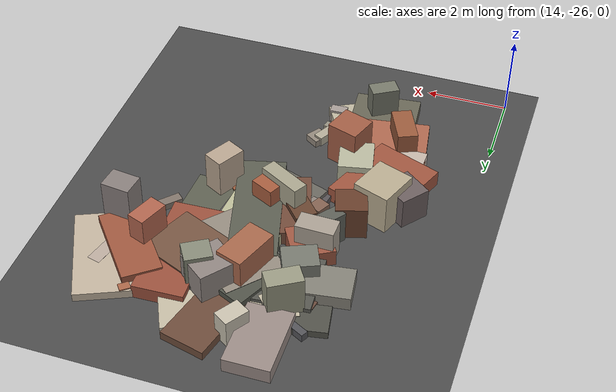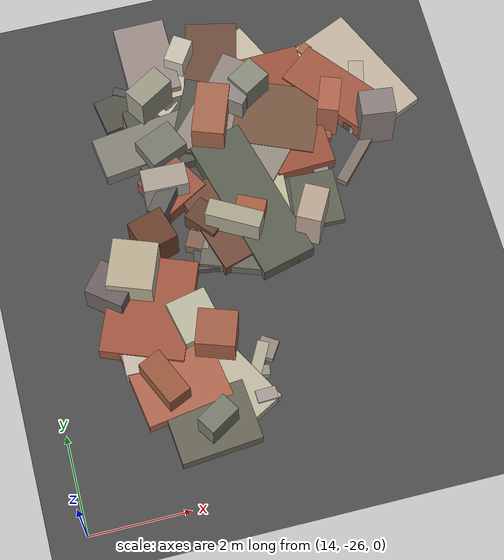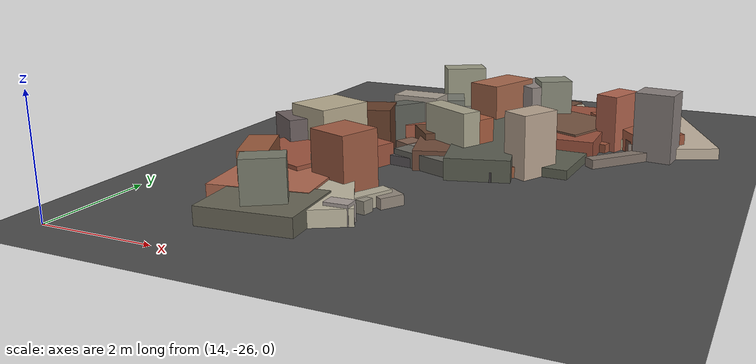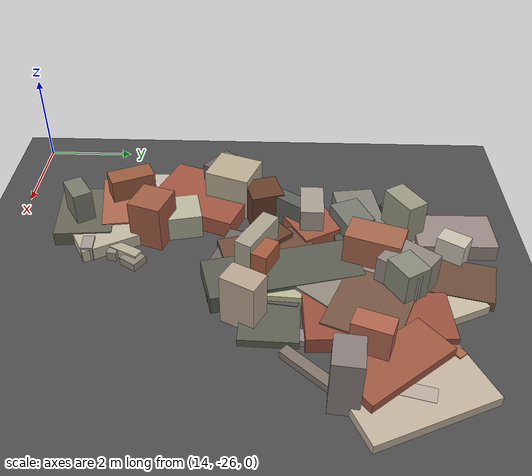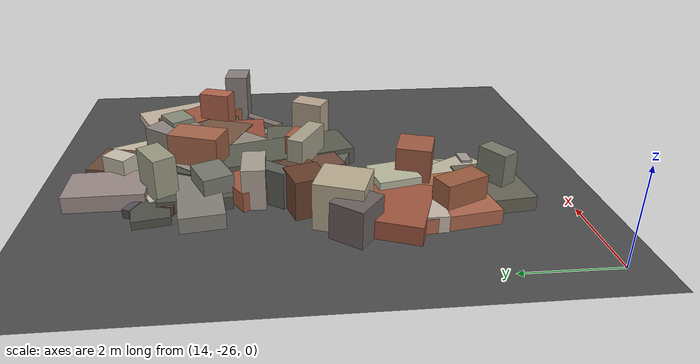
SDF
<sdf version="1.6">
 <world name="navitas_arena">
  <model name="ground_plane">
   <static>true</static>
   <link name="link">
    <collision name="collision">
     <geometry><plane><normal>0 0 1</normal><size>400 400</size></plane></geometry>
     <surface><friction><ode><mu>0.800</mu><mu2>0.800</mu2></ode></friction></surface>
    </collision>
    <visual name="visual">
     <cast_shadows>false</cast_shadows>
     <geometry><plane><normal>0 0 1</normal><size>400 400</size></plane></geometry>
     <material>
      <specular>0.04 0.04 0.04 1</specular>
      <script>
       <uri>file://media/materials/scripts/navitas_asphalt.material</uri>
       <name>Navitas/RealArenaAsphalt</name>
      </script>
     </material>
    </visual>
   </link>
  </model>
  <model name="deb_orta_20">
   <static>true</static>
   <pose>20.561 -17.894 0.000 0 0 0</pose>
   <link name="link">
    <collision name="col_0">
     <pose>0.209 -0.710 0.102 0.000 0.000 2.095</pose>
     <geometry><box><size>0.306 0.192 0.205</size></box></geometry>
    </collision>
    <visual name="vis_0">
     <pose>0.209 -0.710 0.102 0.000 0.000 2.095</pose>
     <geometry><box><size>0.306 0.192 0.205</size></box></geometry>
     <material>
      <ambient>0.67 0.65 0.53 1</ambient>
      <diffuse>0.73 0.70 0.57 1</diffuse>
      <specular>0.05 0.05 0.045 1</specular>
     </material>
    </visual>
    <collision name="col_1">
     <pose>0.013 0.937 0.116 0.000 0.000 2.236</pose>
     <geometry><box><size>0.199 0.258 0.232</size></box></geometry>
    </collision>
    <visual name="vis_1">
     <pose>0.013 0.937 0.116 0.000 0.000 2.236</pose>
     <geometry><box><size>0.199 0.258 0.232</size></box></geometry>
     <material>
      <ambient>0.63 0.38 0.27 1</ambient>
      <diffuse>0.68 0.41 0.29 1</diffuse>
      <specular>0.05 0.05 0.045 1</specular>
     </material>
    </visual>
    <collision name="col_2">
     <pose>0.102 -0.651 0.524 0.000 0.000 1.213</pose>
     <geometry><box><size>0.751 0.433 1.048</size></box></geometry>
    </collision>
    <visual name="vis_2">
     <pose>0.102 -0.651 0.524 0.000 0.000 1.213</pose>
     <geometry><box><size>0.751 0.433 1.048</size></box></geometry>
     <material>
      <ambient>0.65 0.37 0.28 1</ambient>
      <diffuse>0.70 0.40 0.31 1</diffuse>
      <specular>0.05 0.05 0.045 1</specular>
     </material>
    </visual>
    <collision name="col_3">
     <pose>0.066 -0.166 0.128 0.000 0.000 2.943</pose>
     <geometry><box><size>1.283 0.310 0.255</size></box></geometry>
    </collision>
    <visual name="vis_3">
     <pose>0.066 -0.166 0.128 0.000 0.000 2.943</pose>
     <geometry><box><size>1.283 0.310 0.255</size></box></geometry>
     <material>
      <ambient>0.63 0.38 0.26 1</ambient>
      <diffuse>0.68 0.41 0.28 1</diffuse>
      <specular>0.05 0.05 0.045 1</specular>
     </material>
    </visual>
    <collision name="col_4">
     <pose>0.796 -0.373 0.104 0.000 0.000 1.320</pose>
     <geometry><box><size>1.617 0.317 0.208</size></box></geometry>
    </collision>
    <visual name="vis_4">
     <pose>0.796 -0.373 0.104 0.000 0.000 1.320</pose>
     <geometry><box><size>1.617 0.317 0.208</size></box></geometry>
     <material>
      <ambient>0.69 0.63 0.58 1</ambient>
      <diffuse>0.74 0.68 0.63 1</diffuse>
      <specular>0.05 0.05 0.045 1</specular>
     </material>
    </visual>
    <collision name="col_5">
     <pose>0.837 0.072 0.101 0.000 0.000 1.993</pose>
     <geometry><box><size>2.516 1.466 0.203</size></box></geometry>
    </collision>
    <visual name="vis_5">
     <pose>0.837 0.072 0.101 0.000 0.000 1.993</pose>
     <geometry><box><size>2.516 1.466 0.203</size></box></geometry>
     <material>
      <ambient>0.72 0.66 0.58 1</ambient>
      <diffuse>0.77 0.71 0.63 1</diffuse>
      <specular>0.05 0.05 0.045 1</specular>
     </material>
    </visual>
    <collision name="col_6">
     <pose>0.379 -0.228 0.198 0.000 0.000 2.248</pose>
     <geometry><box><size>2.079 0.930 0.396</size></box></geometry>
    </collision>
    <visual name="vis_6">
     <pose>0.379 -0.228 0.198 0.000 0.000 2.248</pose>
     <geometry><box><size>2.079 0.930 0.396</size></box></geometry>
     <material>
      <ambient>0.58 0.33 0.23 1</ambient>
      <diffuse>0.63 0.35 0.25 1</diffuse>
      <specular>0.05 0.05 0.045 1</specular>
     </material>
    </visual>
   </link>
  </model>
  <model name="deb_orta_42">
   <static>true</static>
   <pose>19.477 -20.493 0.000 0 0 0</pose>
   <link name="link">
    <collision name="col_0">
     <pose>0.223 -0.356 0.559 0.000 0.000 2.649</pose>
     <geometry><box><size>0.501 0.742 1.118</size></box></geometry>
    </collision>
    <visual name="vis_0">
     <pose>0.223 -0.356 0.559 0.000 0.000 2.649</pose>
     <geometry><box><size>0.501 0.742 1.118</size></box></geometry>
     <material>
      <ambient>0.67 0.60 0.53 1</ambient>
      <diffuse>0.73 0.65 0.57 1</diffuse>
      <specular>0.05 0.05 0.045 1</specular>
     </material>
    </visual>
    <collision name="col_1">
     <pose>0.687 0.256 0.070 0.000 0.000 1.499</pose>
     <geometry><box><size>1.240 0.309 0.141</size></box></geometry>
    </collision>
    <visual name="vis_1">
     <pose>0.687 0.256 0.070 0.000 0.000 1.499</pose>
     <geometry><box><size>1.240 0.309 0.141</size></box></geometry>
     <material>
      <ambient>0.52 0.50 0.50 1</ambient>
      <diffuse>0.57 0.54 0.54 1</diffuse>
      <specular>0.05 0.05 0.045 1</specular>
     </material>
    </visual>
    <collision name="col_2">
     <pose>-0.041 -0.464 0.097 0.000 0.000 3.854</pose>
     <geometry><box><size>0.370 0.474 0.194</size></box></geometry>
    </collision>
    <visual name="vis_2">
     <pose>-0.041 -0.464 0.097 0.000 0.000 3.854</pose>
     <geometry><box><size>0.370 0.474 0.194</size></box></geometry>
     <material>
      <ambient>0.56 0.34 0.22 1</ambient>
      <diffuse>0.60 0.36 0.24 1</diffuse>
      <specular>0.05 0.05 0.045 1</specular>
     </material>
    </visual>
    <collision name="col_3">
     <pose>-0.129 0.159 0.082 0.000 0.000 3.107</pose>
     <geometry><box><size>2.111 1.156 0.165</size></box></geometry>
    </collision>
    <visual name="vis_3">
     <pose>-0.129 0.159 0.082 0.000 0.000 3.107</pose>
     <geometry><box><size>2.111 1.156 0.165</size></box></geometry>
     <material>
      <ambient>0.34 0.35 0.30 1</ambient>
      <diffuse>0.37 0.38 0.32 1</diffuse>
      <specular>0.05 0.05 0.045 1</specular>
     </material>
    </visual>
   </link>
  </model>
  <model name="deb_orta_53">
   <static>true</static>
   <pose>17.914 -17.893 0.000 0 0 0</pose>
   <link name="link">
    <collision name="col_0">
     <pose>-0.485 -0.044 0.103 0.000 0.000 2.948</pose>
     <geometry><box><size>1.915 0.234 0.206</size></box></geometry>
    </collision>
    <visual name="vis_0">
     <pose>-0.485 -0.044 0.103 0.000 0.000 2.948</pose>
     <geometry><box><size>1.915 0.234 0.206</size></box></geometry>
     <material>
      <ambient>0.39 0.28 0.23 1</ambient>
      <diffuse>0.42 0.30 0.24 1</diffuse>
      <specular>0.05 0.05 0.045 1</specular>
     </material>
    </visual>
    <collision name="col_1">
     <pose>-0.277 -0.207 0.127 0.000 0.000 2.486</pose>
     <geometry><box><size>1.841 0.983 0.253</size></box></geometry>
    </collision>
    <visual name="vis_1">
     <pose>-0.277 -0.207 0.127 0.000 0.000 2.486</pose>
     <geometry><box><size>1.841 0.983 0.253</size></box></geometry>
     <material>
      <ambient>0.59 0.57 0.55 1</ambient>
      <diffuse>0.63 0.61 0.59 1</diffuse>
      <specular>0.05 0.05 0.045 1</specular>
     </material>
    </visual>
    <collision name="col_2">
     <pose>-0.456 0.233 0.142 0.000 0.000 3.910</pose>
     <geometry><box><size>0.491 0.236 0.284</size></box></geometry>
    </collision>
    <visual name="vis_2">
     <pose>-0.456 0.233 0.142 0.000 0.000 3.910</pose>
     <geometry><box><size>0.491 0.236 0.284</size></box></geometry>
     <material>
      <ambient>0.72 0.69 0.60 1</ambient>
      <diffuse>0.78 0.74 0.65 1</diffuse>
      <specular>0.05 0.05 0.045 1</specular>
     </material>
    </visual>
    <collision name="col_3">
     <pose>0.467 0.441 0.099 0.000 0.000 3.582</pose>
     <geometry><box><size>2.971 1.568 0.197</size></box></geometry>
    </collision>
    <visual name="vis_3">
     <pose>0.467 0.441 0.099 0.000 0.000 3.582</pose>
     <geometry><box><size>2.971 1.568 0.197</size></box></geometry>
     <material>
      <ambient>0.72 0.68 0.60 1</ambient>
      <diffuse>0.78 0.74 0.65 1</diffuse>
      <specular>0.05 0.05 0.045 1</specular>
     </material>
    </visual>
    <collision name="col_4">
     <pose>0.795 -0.758 0.187 0.000 0.000 2.428</pose>
     <geometry><box><size>2.260 1.522 0.374</size></box></geometry>
    </collision>
    <visual name="vis_4">
     <pose>0.795 -0.758 0.187 0.000 0.000 2.428</pose>
     <geometry><box><size>2.260 1.522 0.374</size></box></geometry>
     <material>
      <ambient>0.54 0.51 0.46 1</ambient>
      <diffuse>0.59 0.55 0.50 1</diffuse>
      <specular>0.05 0.05 0.045 1</specular>
     </material>
    </visual>
   </link>
  </model>
  <model name="deb_orta_57">
   <static>true</static>
   <pose>17.828 -23.618 0.000 0 0 0</pose>
   <link name="link">
    <collision name="col_0">
     <pose>0.132 -0.051 0.106 0.000 0.000 1.366</pose>
     <geometry><box><size>0.204 0.291 0.213</size></box></geometry>
    </collision>
    <visual name="vis_0">
     <pose>0.132 -0.051 0.106 0.000 0.000 1.366</pose>
     <geometry><box><size>0.204 0.291 0.213</size></box></geometry>
     <material>
      <ambient>0.54 0.53 0.47 1</ambient>
      <diffuse>0.59 0.57 0.51 1</diffuse>
      <specular>0.05 0.05 0.045 1</specular>
     </material>
    </visual>
    <collision name="col_1">
     <pose>0.082 -0.590 0.167 0.000 0.000 1.609</pose>
     <geometry><box><size>0.249 0.407 0.335</size></box></geometry>
    </collision>
    <visual name="vis_1">
     <pose>0.082 -0.590 0.167 0.000 0.000 1.609</pose>
     <geometry><box><size>0.249 0.407 0.335</size></box></geometry>
     <material>
      <ambient>0.61 0.57 0.54 1</ambient>
      <diffuse>0.65 0.61 0.59 1</diffuse>
      <specular>0.05 0.05 0.045 1</specular>
     </material>
    </visual>
    <collision name="col_2">
     <pose>0.338 0.387 0.090 0.000 0.000 0.992</pose>
     <geometry><box><size>0.409 0.366 0.179</size></box></geometry>
    </collision>
    <visual name="vis_2">
     <pose>0.338 0.387 0.090 0.000 0.000 0.992</pose>
     <geometry><box><size>0.409 0.366 0.179</size></box></geometry>
     <material>
      <ambient>0.54 0.50 0.45 1</ambient>
      <diffuse>0.58 0.54 0.49 1</diffuse>
      <specular>0.05 0.05 0.045 1</specular>
     </material>
    </visual>
    <collision name="col_3">
     <pose>-0.054 -0.460 0.105 0.000 0.000 1.531</pose>
     <geometry><box><size>0.360 0.331 0.211</size></box></geometry>
    </collision>
    <visual name="vis_3">
     <pose>-0.054 -0.460 0.105 0.000 0.000 1.531</pose>
     <geometry><box><size>0.360 0.331 0.211</size></box></geometry>
     <material>
      <ambient>0.61 0.38 0.24 1</ambient>
      <diffuse>0.66 0.41 0.26 1</diffuse>
      <specular>0.05 0.05 0.045 1</specular>
     </material>
    </visual>
   </link>
  </model>
  <model name="deb_orta_59">
   <static>true</static>
   <pose>17.420 -19.237 0.000 0 0 0</pose>
   <link name="link">
    <collision name="col_0">
     <pose>-0.218 -0.431 0.118 0.000 0.000 1.847</pose>
     <geometry><box><size>0.222 0.355 0.235</size></box></geometry>
    </collision>
    <visual name="vis_0">
     <pose>-0.218 -0.431 0.118 0.000 0.000 1.847</pose>
     <geometry><box><size>0.222 0.355 0.235</size></box></geometry>
     <material>
      <ambient>0.65 0.42 0.31 1</ambient>
      <diffuse>0.70 0.45 0.33 1</diffuse>
      <specular>0.05 0.05 0.045 1</specular>
     </material>
    </visual>
    <collision name="col_1">
     <pose>-0.278 -0.200 0.205 0.000 0.000 0.524</pose>
     <geometry><box><size>0.977 0.970 0.409</size></box></geometry>
    </collision>
    <visual name="vis_1">
     <pose>-0.278 -0.200 0.205 0.000 0.000 0.524</pose>
     <geometry><box><size>0.977 0.970 0.409</size></box></geometry>
     <material>
      <ambient>0.59 0.32 0.24 1</ambient>
      <diffuse>0.63 0.35 0.26 1</diffuse>
      <specular>0.05 0.05 0.045 1</specular>
     </material>
    </visual>
    <collision name="col_2">
     <pose>0.615 -0.052 0.091 0.000 0.000 0.782</pose>
     <geometry><box><size>0.231 0.264 0.181</size></box></geometry>
    </collision>
    <visual name="vis_2">
     <pose>0.615 -0.052 0.091 0.000 0.000 0.782</pose>
     <geometry><box><size>0.231 0.264 0.181</size></box></geometry>
     <material>
      <ambient>0.62 0.38 0.25 1</ambient>
      <diffuse>0.67 0.41 0.27 1</diffuse>
      <specular>0.05 0.05 0.045 1</specular>
     </material>
    </visual>
    <collision name="col_3">
     <pose>-0.496 -0.584 0.403 0.000 0.000 0.935</pose>
     <geometry><box><size>0.903 0.351 0.805</size></box></geometry>
    </collision>
    <visual name="vis_3">
     <pose>-0.496 -0.584 0.403 0.000 0.000 0.935</pose>
     <geometry><box><size>0.903 0.351 0.805</size></box></geometry>
     <material>
      <ambient>0.34 0.35 0.33 1</ambient>
      <diffuse>0.37 0.38 0.35 1</diffuse>
      <specular>0.05 0.05 0.045 1</specular>
     </material>
    </visual>
    <collision name="col_4">
     <pose>-0.418 -0.252 0.448 0.000 0.000 1.551</pose>
     <geometry><box><size>0.489 0.910 0.895</size></box></geometry>
    </collision>
    <visual name="vis_4">
     <pose>-0.418 -0.252 0.448 0.000 0.000 1.551</pose>
     <geometry><box><size>0.489 0.910 0.895</size></box></geometry>
     <material>
      <ambient>0.62 0.59 0.54 1</ambient>
      <diffuse>0.67 0.63 0.58 1</diffuse>
      <specular>0.05 0.05 0.045 1</specular>
     </material>
    </visual>
    <collision name="col_5">
     <pose>-0.303 0.612 0.336 0.000 0.000 1.984</pose>
     <geometry><box><size>0.653 0.822 0.672</size></box></geometry>
    </collision>
    <visual name="vis_5">
     <pose>-0.303 0.612 0.336 0.000 0.000 1.984</pose>
     <geometry><box><size>0.653 0.822 0.672</size></box></geometry>
     <material>
      <ambient>0.43 0.45 0.41 1</ambient>
      <diffuse>0.47 0.48 0.44 1</diffuse>
      <specular>0.05 0.05 0.045 1</specular>
     </material>
    </visual>
   </link>
  </model>
  <model name="deb_orta_89">
   <static>true</static>
   <pose>21.006 -18.427 0.000 0 0 0</pose>
   <link name="link">
    <collision name="col_0">
     <pose>0.504 -0.628 0.621 0.000 0.000 -0.114</pose>
     <geometry><box><size>0.698 0.556 1.242</size></box></geometry>
    </collision>
    <visual name="vis_0">
     <pose>0.504 -0.628 0.621 0.000 0.000 -0.114</pose>
     <geometry><box><size>0.698 0.556 1.242</size></box></geometry>
     <material>
      <ambient>0.50 0.46 0.45 1</ambient>
      <diffuse>0.54 0.50 0.49 1</diffuse>
      <specular>0.05 0.05 0.045 1</specular>
     </material>
    </visual>
    <collision name="col_1">
     <pose>0.047 -0.402 0.121 0.000 0.000 2.193</pose>
     <geometry><box><size>0.246 0.229 0.241</size></box></geometry>
    </collision>
    <visual name="vis_1">
     <pose>0.047 -0.402 0.121 0.000 0.000 2.193</pose>
     <geometry><box><size>0.246 0.229 0.241</size></box></geometry>
     <material>
      <ambient>0.41 0.27 0.21 1</ambient>
      <diffuse>0.44 0.29 0.23 1</diffuse>
      <specular>0.05 0.05 0.045 1</specular>
     </material>
    </visual>
    <collision name="col_2">
     <pose>-0.562 -0.468 0.081 0.000 0.000 1.321</pose>
     <geometry><box><size>0.326 0.388 0.161</size></box></geometry>
    </collision>
    <visual name="vis_2">
     <pose>-0.562 -0.468 0.081 0.000 0.000 1.321</pose>
     <geometry><box><size>0.326 0.388 0.161</size></box></geometry>
     <material>
      <ambient>0.57 0.31 0.22 1</ambient>
      <diffuse>0.62 0.34 0.24 1</diffuse>
      <specular>0.05 0.05 0.045 1</specular>
     </material>
    </visual>
    <collision name="col_3">
     <pose>0.190 -0.950 0.082 0.000 0.000 0.833</pose>
     <geometry><box><size>1.943 0.231 0.163</size></box></geometry>
    </collision>
    <visual name="vis_3">
     <pose>0.190 -0.950 0.082 0.000 0.000 0.833</pose>
     <geometry><box><size>1.943 0.231 0.163</size></box></geometry>
     <material>
      <ambient>0.47 0.42 0.39 1</ambient>
      <diffuse>0.51 0.46 0.42 1</diffuse>
      <specular>0.05 0.05 0.045 1</specular>
     </material>
    </visual>
   </link>
  </model>
  <model name="deb_orta_93">
   <static>true</static>
   <pose>18.515 -17.809 0.000 0 0 0</pose>
   <link name="link">
    <collision name="col_0">
     <pose>0.646 0.066 0.522 0.000 0.000 -1.014</pose>
     <geometry><box><size>0.546 0.633 1.044</size></box></geometry>
    </collision>
    <visual name="vis_0">
     <pose>0.646 0.066 0.522 0.000 0.000 -1.014</pose>
     <geometry><box><size>0.546 0.633 1.044</size></box></geometry>
     <material>
      <ambient>0.50 0.51 0.45 1</ambient>
      <diffuse>0.54 0.55 0.48 1</diffuse>
      <specular>0.05 0.05 0.045 1</specular>
     </material>
    </visual>
    <collision name="col_1">
     <pose>-0.641 -0.227 0.167 0.000 0.000 0.992</pose>
     <geometry><box><size>1.692 0.231 0.334</size></box></geometry>
    </collision>
    <visual name="vis_1">
     <pose>-0.641 -0.227 0.167 0.000 0.000 0.992</pose>
     <geometry><box><size>1.692 0.231 0.334</size></box></geometry>
     <material>
      <ambient>0.62 0.39 0.28 1</ambient>
      <diffuse>0.67 0.42 0.30 1</diffuse>
      <specular>0.05 0.05 0.045 1</specular>
     </material>
    </visual>
    <collision name="col_2">
     <pose>-0.037 0.604 0.107 0.000 0.000 1.328</pose>
     <geometry><box><size>2.746 1.080 0.214</size></box></geometry>
    </collision>
    <visual name="vis_2">
     <pose>-0.037 0.604 0.107 0.000 0.000 1.328</pose>
     <geometry><box><size>2.746 1.080 0.214</size></box></geometry>
     <material>
      <ambient>0.40 0.28 0.21 1</ambient>
      <diffuse>0.43 0.30 0.23 1</diffuse>
      <specular>0.05 0.05 0.045 1</specular>
     </material>
    </visual>
    <collision name="col_3">
     <pose>0.336 0.126 0.471 0.000 0.000 0.907</pose>
     <geometry><box><size>0.941 0.856 0.941</size></box></geometry>
    </collision>
    <visual name="vis_3">
     <pose>0.336 0.126 0.471 0.000 0.000 0.907</pose>
     <geometry><box><size>0.941 0.856 0.941</size></box></geometry>
     <material>
      <ambient>0.53 0.49 0.47 1</ambient>
      <diffuse>0.57 0.53 0.51 1</diffuse>
      <specular>0.05 0.05 0.045 1</specular>
     </material>
    </visual>
    <collision name="col_4">
     <pose>-0.060 -0.690 0.162 0.000 0.000 -0.709</pose>
     <geometry><box><size>0.411 0.419 0.324</size></box></geometry>
    </collision>
    <visual name="vis_4">
     <pose>-0.060 -0.690 0.162 0.000 0.000 -0.709</pose>
     <geometry><box><size>0.411 0.419 0.324</size></box></geometry>
     <material>
      <ambient>0.57 0.56 0.50 1</ambient>
      <diffuse>0.62 0.61 0.54 1</diffuse>
      <specular>0.05 0.05 0.045 1</specular>
     </material>
    </visual>
    <collision name="col_5">
     <pose>-0.072 -0.452 0.181 0.000 0.000 1.139</pose>
     <geometry><box><size>1.666 1.788 0.363</size></box></geometry>
    </collision>
    <visual name="vis_5">
     <pose>-0.072 -0.452 0.181 0.000 0.000 1.139</pose>
     <geometry><box><size>1.666 1.788 0.363</size></box></geometry>
     <material>
      <ambient>0.30 0.30 0.27 1</ambient>
      <diffuse>0.32 0.33 0.29 1</diffuse>
      <specular>0.05 0.05 0.045 1</specular>
     </material>
    </visual>
   </link>
  </model>
  <model name="deb_orta_109">
   <static>true</static>
   <pose>16.733 -20.358 0.000 0 0 0</pose>
   <link name="link">
    <collision name="col_0">
     <pose>0.604 -0.344 0.148 0.000 0.000 2.675</pose>
     <geometry><box><size>0.339 0.373 0.295</size></box></geometry>
    </collision>
    <visual name="vis_0">
     <pose>0.604 -0.344 0.148 0.000 0.000 2.675</pose>
     <geometry><box><size>0.339 0.373 0.295</size></box></geometry>
     <material>
      <ambient>0.49 0.36 0.30 1</ambient>
      <diffuse>0.52 0.39 0.32 1</diffuse>
      <specular>0.05 0.05 0.045 1</specular>
     </material>
    </visual>
    <collision name="col_1">
     <pose>0.959 0.144 0.140 0.000 0.000 4.350</pose>
     <geometry><box><size>1.496 0.240 0.281</size></box></geometry>
    </collision>
    <visual name="vis_1">
     <pose>0.959 0.144 0.140 0.000 0.000 4.350</pose>
     <geometry><box><size>1.496 0.240 0.281</size></box></geometry>
     <material>
      <ambient>0.52 0.48 0.45 1</ambient>
      <diffuse>0.56 0.52 0.49 1</diffuse>
      <specular>0.05 0.05 0.045 1</specular>
     </material>
    </visual>
    <collision name="col_2">
     <pose>0.265 0.874 0.156 0.000 0.000 2.629</pose>
     <geometry><box><size>0.383 0.387 0.312</size></box></geometry>
    </collision>
    <visual name="vis_2">
     <pose>0.265 0.874 0.156 0.000 0.000 2.629</pose>
     <geometry><box><size>0.383 0.387 0.312</size></box></geometry>
     <material>
      <ambient>0.43 0.30 0.24 1</ambient>
      <diffuse>0.47 0.33 0.26 1</diffuse>
      <specular>0.05 0.05 0.045 1</specular>
     </material>
    </visual>
    <collision name="col_3">
     <pose>-0.214 -0.171 0.418 0.000 0.000 1.864</pose>
     <geometry><box><size>0.717 0.735 0.836</size></box></geometry>
    </collision>
    <visual name="vis_3">
     <pose>-0.214 -0.171 0.418 0.000 0.000 1.864</pose>
     <geometry><box><size>0.717 0.735 0.836</size></box></geometry>
     <material>
      <ambient>0.38 0.23 0.16 1</ambient>
      <diffuse>0.41 0.25 0.17 1</diffuse>
      <specular>0.05 0.05 0.045 1</specular>
     </material>
    </visual>
   </link>
  </model>
  <model name="deb_orta_118">
   <static>true</static>
   <pose>18.256 -20.398 0.000 0 0 0</pose>
   <link name="link">
    <collision name="col_0">
     <pose>0.087 -0.160 0.088 0.000 0.000 3.007</pose>
     <geometry><box><size>2.100 1.795 0.175</size></box></geometry>
    </collision>
    <visual name="vis_0">
     <pose>0.087 -0.160 0.088 0.000 0.000 3.007</pose>
     <geometry><box><size>2.100 1.795 0.175</size></box></geometry>
     <material>
      <ambient>0.33 0.31 0.31 1</ambient>
      <diffuse>0.35 0.33 0.34 1</diffuse>
      <specular>0.05 0.05 0.045 1</specular>
     </material>
    </visual>
    <collision name="col_1">
     <pose>0.122 0.224 0.119 0.000 0.000 3.754</pose>
     <geometry><box><size>0.188 0.307 0.239</size></box></geometry>
    </collision>
    <visual name="vis_1">
     <pose>0.122 0.224 0.119 0.000 0.000 3.754</pose>
     <geometry><box><size>0.188 0.307 0.239</size></box></geometry>
     <material>
      <ambient>0.45 0.42 0.40 1</ambient>
      <diffuse>0.49 0.46 0.44 1</diffuse>
      <specular>0.05 0.05 0.045 1</specular>
     </material>
    </visual>
    <collision name="col_2">
     <pose>0.373 0.283 0.194 0.000 0.000 1.828</pose>
     <geometry><box><size>3.146 1.126 0.388</size></box></geometry>
    </collision>
    <visual name="vis_2">
     <pose>0.373 0.283 0.194 0.000 0.000 1.828</pose>
     <geometry><box><size>3.146 1.126 0.388</size></box></geometry>
     <material>
      <ambient>0.33 0.34 0.30 1</ambient>
      <diffuse>0.36 0.37 0.32 1</diffuse>
      <specular>0.05 0.05 0.045 1</specular>
     </material>
    </visual>
    <collision name="col_3">
     <pose>0.014 0.423 0.083 0.000 0.000 3.542</pose>
     <geometry><box><size>1.005 0.152 0.166</size></box></geometry>
    </collision>
    <visual name="vis_3">
     <pose>0.014 0.423 0.083 0.000 0.000 3.542</pose>
     <geometry><box><size>1.005 0.152 0.166</size></box></geometry>
     <material>
      <ambient>0.64 0.41 0.28 1</ambient>
      <diffuse>0.69 0.45 0.30 1</diffuse>
      <specular>0.05 0.05 0.045 1</specular>
     </material>
    </visual>
    <collision name="col_4">
     <pose>0.088 -0.031 0.140 0.000 0.000 1.223</pose>
     <geometry><box><size>2.236 1.429 0.279</size></box></geometry>
    </collision>
    <visual name="vis_4">
     <pose>0.088 -0.031 0.140 0.000 0.000 1.223</pose>
     <geometry><box><size>2.236 1.429 0.279</size></box></geometry>
     <material>
      <ambient>0.38 0.38 0.35 1</ambient>
      <diffuse>0.42 0.41 0.38 1</diffuse>
      <specular>0.05 0.05 0.045 1</specular>
     </material>
    </visual>
    <collision name="col_5">
     <pose>0.263 -0.088 0.411 0.000 0.000 2.687</pose>
     <geometry><box><size>0.596 0.391 0.822</size></box></geometry>
    </collision>
    <visual name="vis_5">
     <pose>0.263 -0.088 0.411 0.000 0.000 2.687</pose>
     <geometry><box><size>0.596 0.391 0.822</size></box></geometry>
     <material>
      <ambient>0.61 0.34 0.23 1</ambient>
      <diffuse>0.66 0.37 0.25 1</diffuse>
      <specular>0.05 0.05 0.045 1</specular>
     </material>
    </visual>
    <collision name="col_6">
     <pose>-0.096 -0.240 0.497 0.000 0.000 2.626</pose>
     <geometry><box><size>1.115 0.364 0.994</size></box></geometry>
    </collision>
    <visual name="vis_6">
     <pose>-0.096 -0.240 0.497 0.000 0.000 2.626</pose>
     <geometry><box><size>1.115 0.364 0.994</size></box></geometry>
     <material>
      <ambient>0.62 0.60 0.51 1</ambient>
      <diffuse>0.67 0.65 0.56 1</diffuse>
      <specular>0.05 0.05 0.045 1</specular>
     </material>
    </visual>
   </link>
  </model>
  <model name="deb_orta_144">
   <static>true</static>
   <pose>15.732 -21.875 0.000 0 0 0</pose>
   <link name="link">
    <collision name="col_0">
     <pose>0.241 0.658 0.499 0.000 0.000 1.215</pose>
     <geometry><box><size>1.009 0.910 0.998</size></box></geometry>
    </collision>
    <visual name="vis_0">
     <pose>0.241 0.658 0.499 0.000 0.000 1.215</pose>
     <geometry><box><size>1.009 0.910 0.998</size></box></geometry>
     <material>
      <ambient>0.67 0.63 0.53 1</ambient>
      <diffuse>0.73 0.68 0.57 1</diffuse>
      <specular>0.05 0.05 0.045 1</specular>
     </material>
    </visual>
    <collision name="col_1">
     <pose>0.389 -0.035 0.195 0.000 0.000 1.201</pose>
     <geometry><box><size>2.091 1.669 0.391</size></box></geometry>
    </collision>
    <visual name="vis_1">
     <pose>0.389 -0.035 0.195 0.000 0.000 1.201</pose>
     <geometry><box><size>2.091 1.669 0.391</size></box></geometry>
     <material>
      <ambient>0.58 0.31 0.23 1</ambient>
      <diffuse>0.63 0.34 0.25 1</diffuse>
      <specular>0.05 0.05 0.045 1</specular>
     </material>
    </visual>
    <collision name="col_2">
     <pose>-0.240 0.463 0.389 0.000 0.000 0.906</pose>
     <geometry><box><size>0.730 0.802 0.779</size></box></geometry>
    </collision>
    <visual name="vis_2">
     <pose>-0.240 0.463 0.389 0.000 0.000 0.906</pose>
     <geometry><box><size>0.730 0.802 0.779</size></box></geometry>
     <material>
      <ambient>0.39 0.35 0.35 1</ambient>
      <diffuse>0.43 0.38 0.38 1</diffuse>
      <specular>0.05 0.05 0.045 1</specular>
     </material>
    </visual>
    <collision name="col_3">
     <pose>0.236 -0.499 0.140 0.000 0.000 0.332</pose>
     <geometry><box><size>0.479 0.336 0.279</size></box></geometry>
    </collision>
    <visual name="vis_3">
     <pose>0.236 -0.499 0.140 0.000 0.000 0.332</pose>
     <geometry><box><size>0.479 0.336 0.279</size></box></geometry>
     <material>
      <ambient>0.30 0.33 0.28 1</ambient>
      <diffuse>0.33 0.35 0.31 1</diffuse>
      <specular>0.05 0.05 0.045 1</specular>
     </material>
    </visual>
    <collision name="col_4">
     <pose>-0.010 -0.874 0.177 0.000 0.000 1.558</pose>
     <geometry><box><size>0.902 0.678 0.354</size></box></geometry>
    </collision>
    <visual name="vis_4">
     <pose>-0.010 -0.874 0.177 0.000 0.000 1.558</pose>
     <geometry><box><size>0.902 0.678 0.354</size></box></geometry>
     <material>
      <ambient>0.73 0.67 0.62 1</ambient>
      <diffuse>0.78 0.72 0.67 1</diffuse>
      <specular>0.05 0.05 0.045 1</specular>
     </material>
    </visual>
    <collision name="col_5">
     <pose>0.249 0.551 0.078 0.000 0.000 1.695</pose>
     <geometry><box><size>1.047 0.234 0.156</size></box></geometry>
    </collision>
    <visual name="vis_5">
     <pose>0.249 0.551 0.078 0.000 0.000 1.695</pose>
     <geometry><box><size>1.047 0.234 0.156</size></box></geometry>
     <material>
      <ambient>0.71 0.72 0.64 1</ambient>
      <diffuse>0.77 0.78 0.69 1</diffuse>
      <specular>0.05 0.05 0.045 1</specular>
     </material>
    </visual>
   </link>
  </model>
  <model name="deb_orta_191">
   <static>true</static>
   <pose>16.909 -23.907 0.000 0 0 0</pose>
   <link name="link">
    <collision name="col_0">
     <pose>-0.036 -0.660 0.504 0.000 0.000 0.557</pose>
     <geometry><box><size>0.680 0.413 1.007</size></box></geometry>
    </collision>
    <visual name="vis_0">
     <pose>-0.036 -0.660 0.504 0.000 0.000 0.557</pose>
     <geometry><box><size>0.680 0.413 1.007</size></box></geometry>
     <material>
      <ambient>0.43 0.44 0.39 1</ambient>
      <diffuse>0.47 0.48 0.42 1</diffuse>
      <specular>0.05 0.05 0.045 1</specular>
     </material>
    </visual>
    <collision name="col_1">
     <pose>-0.131 -0.572 0.155 0.000 0.000 0.095</pose>
     <geometry><box><size>1.614 1.233 0.309</size></box></geometry>
    </collision>
    <visual name="vis_1">
     <pose>-0.131 -0.572 0.155 0.000 0.000 0.095</pose>
     <geometry><box><size>1.614 1.233 0.309</size></box></geometry>
     <material>
      <ambient>0.38 0.37 0.32 1</ambient>
      <diffuse>0.41 0.40 0.34 1</diffuse>
      <specular>0.05 0.05 0.045 1</specular>
     </material>
    </visual>
    <collision name="col_2">
     <pose>0.339 1.005 0.524 0.000 0.000 1.243</pose>
     <geometry><box><size>0.733 0.779 1.049</size></box></geometry>
    </collision>
    <visual name="vis_2">
     <pose>0.339 1.005 0.524 0.000 0.000 1.243</pose>
     <geometry><box><size>0.733 0.779 1.049</size></box></geometry>
     <material>
      <ambient>0.60 0.35 0.25 1</ambient>
      <diffuse>0.64 0.37 0.27 1</diffuse>
      <specular>0.05 0.05 0.045 1</specular>
     </material>
    </visual>
    <collision name="col_3">
     <pose>0.871 0.144 0.116 0.000 0.000 1.088</pose>
     <geometry><box><size>1.479 0.234 0.232</size></box></geometry>
    </collision>
    <visual name="vis_3">
     <pose>0.871 0.144 0.116 0.000 0.000 1.088</pose>
     <geometry><box><size>1.479 0.234 0.232</size></box></geometry>
     <material>
      <ambient>0.66 0.63 0.55 1</ambient>
      <diffuse>0.71 0.68 0.60 1</diffuse>
      <specular>0.05 0.05 0.045 1</specular>
     </material>
    </visual>
   </link>
  </model>
  <model name="deb_orta_217">
   <static>true</static>
   <pose>19.669 -18.466 0.000 0 0 0</pose>
   <link name="link">
    <collision name="col_0">
     <pose>0.009 -0.180 0.134 0.000 0.000 2.049</pose>
     <geometry><box><size>1.444 0.141 0.268</size></box></geometry>
    </collision>
    <visual name="vis_0">
     <pose>0.009 -0.180 0.134 0.000 0.000 2.049</pose>
     <geometry><box><size>1.444 0.141 0.268</size></box></geometry>
     <material>
      <ambient>0.68 0.65 0.56 1</ambient>
      <diffuse>0.74 0.70 0.60 1</diffuse>
      <specular>0.05 0.05 0.045 1</specular>
     </material>
    </visual>
    <collision name="col_1">
     <pose>-0.050 0.420 0.151 0.000 0.000 -0.103</pose>
     <geometry><box><size>0.359 0.426 0.301</size></box></geometry>
    </collision>
    <visual name="vis_1">
     <pose>-0.050 0.420 0.151 0.000 0.000 -0.103</pose>
     <geometry><box><size>0.359 0.426 0.301</size></box></geometry>
     <material>
      <ambient>0.57 0.54 0.48 1</ambient>
      <diffuse>0.61 0.59 0.52 1</diffuse>
      <specular>0.05 0.05 0.045 1</specular>
     </material>
    </visual>
    <collision name="col_2">
     <pose>0.179 0.143 0.173 0.000 0.000 1.612</pose>
     <geometry><box><size>2.786 1.196 0.346</size></box></geometry>
    </collision>
    <visual name="vis_2">
     <pose>0.179 0.143 0.173 0.000 0.000 1.612</pose>
     <geometry><box><size>2.786 1.196 0.346</size></box></geometry>
     <material>
      <ambient>0.56 0.30 0.23 1</ambient>
      <diffuse>0.61 0.32 0.24 1</diffuse>
      <specular>0.05 0.05 0.045 1</specular>
     </material>
    </visual>
    <collision name="col_3">
     <pose>-0.074 0.036 0.192 0.000 0.000 -0.403</pose>
     <geometry><box><size>1.721 1.443 0.383</size></box></geometry>
    </collision>
    <visual name="vis_3">
     <pose>-0.074 0.036 0.192 0.000 0.000 -0.403</pose>
     <geometry><box><size>1.721 1.443 0.383</size></box></geometry>
     <material>
      <ambient>0.43 0.31 0.24 1</ambient>
      <diffuse>0.47 0.34 0.26 1</diffuse>
      <specular>0.05 0.05 0.045 1</specular>
     </material>
    </visual>
   </link>
  </model>
  <model name="deb_orta_218">
   <static>true</static>
   <pose>18.253 -20.340 0.000 0 0 0</pose>
   <link name="link">
    <collision name="col_0">
     <pose>0.347 0.404 0.151 0.000 0.000 1.505</pose>
     <geometry><box><size>2.377 1.571 0.302</size></box></geometry>
    </collision>
    <visual name="vis_0">
     <pose>0.347 0.404 0.151 0.000 0.000 1.505</pose>
     <geometry><box><size>2.377 1.571 0.302</size></box></geometry>
     <material>
      <ambient>0.68 0.68 0.56 1</ambient>
      <diffuse>0.74 0.74 0.60 1</diffuse>
      <specular>0.05 0.05 0.045 1</specular>
     </material>
    </visual>
    <collision name="col_1">
     <pose>-0.595 0.006 0.238 0.000 0.000 2.281</pose>
     <geometry><box><size>0.711 0.527 0.476</size></box></geometry>
    </collision>
    <visual name="vis_1">
     <pose>-0.595 0.006 0.238 0.000 0.000 2.281</pose>
     <geometry><box><size>0.711 0.527 0.476</size></box></geometry>
     <material>
      <ambient>0.38 0.25 0.18 1</ambient>
      <diffuse>0.41 0.27 0.19 1</diffuse>
      <specular>0.05 0.05 0.045 1</specular>
     </material>
    </visual>
    <collision name="col_2">
     <pose>-0.405 0.125 0.095 0.000 0.000 2.973</pose>
     <geometry><box><size>1.136 0.128 0.190</size></box></geometry>
    </collision>
    <visual name="vis_2">
     <pose>-0.405 0.125 0.095 0.000 0.000 2.973</pose>
     <geometry><box><size>1.136 0.128 0.190</size></box></geometry>
     <material>
      <ambient>0.64 0.60 0.56 1</ambient>
      <diffuse>0.69 0.64 0.61 1</diffuse>
      <specular>0.05 0.05 0.045 1</specular>
     </material>
    </visual>
    <collision name="col_3">
     <pose>-0.232 -0.517 0.140 0.000 0.000 1.805</pose>
     <geometry><box><size>0.213 0.302 0.281</size></box></geometry>
    </collision>
    <visual name="vis_3">
     <pose>-0.232 -0.517 0.140 0.000 0.000 1.805</pose>
     <geometry><box><size>0.213 0.302 0.281</size></box></geometry>
     <material>
      <ambient>0.57 0.32 0.23 1</ambient>
      <diffuse>0.62 0.35 0.25 1</diffuse>
      <specular>0.05 0.05 0.045 1</specular>
     </material>
    </visual>
    <collision name="col_4">
     <pose>0.017 0.002 0.180 0.000 0.000 1.868</pose>
     <geometry><box><size>1.905 1.644 0.359</size></box></geometry>
    </collision>
    <visual name="vis_4">
     <pose>0.017 0.002 0.180 0.000 0.000 1.868</pose>
     <geometry><box><size>1.905 1.644 0.359</size></box></geometry>
     <material>
      <ambient>0.41 0.28 0.22 1</ambient>
      <diffuse>0.45 0.30 0.23 1</diffuse>
      <specular>0.05 0.05 0.045 1</specular>
     </material>
    </visual>
   </link>
  </model>
  <model name="deb_orta_237">
   <static>true</static>
   <pose>17.458 -17.398 0.000 0 0 0</pose>
   <link name="link">
    <collision name="col_0">
     <pose>0.525 -0.796 0.142 0.000 0.000 3.216</pose>
     <geometry><box><size>2.817 1.525 0.284</size></box></geometry>
    </collision>
    <visual name="vis_0">
     <pose>0.525 -0.796 0.142 0.000 0.000 3.216</pose>
     <geometry><box><size>2.817 1.525 0.284</size></box></geometry>
     <material>
      <ambient>0.32 0.31 0.29 1</ambient>
      <diffuse>0.34 0.34 0.31 1</diffuse>
      <specular>0.05 0.05 0.045 1</specular>
     </material>
    </visual>
    <collision name="col_1">
     <pose>-0.123 0.123 0.090 0.000 0.000 3.316</pose>
     <geometry><box><size>2.571 0.764 0.179</size></box></geometry>
    </collision>
    <visual name="vis_1">
     <pose>-0.123 0.123 0.090 0.000 0.000 3.316</pose>
     <geometry><box><size>2.571 0.764 0.179</size></box></geometry>
     <material>
      <ambient>0.30 0.30 0.27 1</ambient>
      <diffuse>0.32 0.32 0.29 1</diffuse>
      <specular>0.05 0.05 0.045 1</specular>
     </material>
    </visual>
    <collision name="col_2">
     <pose>0.587 -0.556 0.164 0.000 0.000 3.322</pose>
     <geometry><box><size>0.364 0.262 0.328</size></box></geometry>
    </collision>
    <visual name="vis_2">
     <pose>0.587 -0.556 0.164 0.000 0.000 3.322</pose>
     <geometry><box><size>0.364 0.262 0.328</size></box></geometry>
     <material>
      <ambient>0.42 0.28 0.21 1</ambient>
      <diffuse>0.45 0.30 0.23 1</diffuse>
      <specular>0.05 0.05 0.045 1</specular>
     </material>
    </visual>
    <collision name="col_3">
     <pose>-0.248 -0.914 0.166 0.000 0.000 3.280</pose>
     <geometry><box><size>2.753 0.912 0.333</size></box></geometry>
    </collision>
    <visual name="vis_3">
     <pose>-0.248 -0.914 0.166 0.000 0.000 3.280</pose>
     <geometry><box><size>2.753 0.912 0.333</size></box></geometry>
     <material>
      <ambient>0.48 0.48 0.44 1</ambient>
      <diffuse>0.52 0.51 0.47 1</diffuse>
      <specular>0.05 0.05 0.045 1</specular>
     </material>
    </visual>
    <collision name="col_4">
     <pose>0.488 0.792 0.348 0.000 0.000 4.136</pose>
     <geometry><box><size>0.603 0.412 0.695</size></box></geometry>
    </collision>
    <visual name="vis_4">
     <pose>0.488 0.792 0.348 0.000 0.000 4.136</pose>
     <geometry><box><size>0.603 0.412 0.695</size></box></geometry>
     <material>
      <ambient>0.73 0.70 0.64 1</ambient>
      <diffuse>0.79 0.76 0.69 1</diffuse>
      <specular>0.05 0.05 0.045 1</specular>
     </material>
    </visual>
   </link>
  </model>
  <model name="deb_orta_243">
   <static>true</static>
   <pose>16.390 -22.889 0.000 0 0 0</pose>
   <link name="link">
    <collision name="col_0">
     <pose>-0.320 -0.665 0.420 0.000 0.000 1.998</pose>
     <geometry><box><size>0.986 0.490 0.840</size></box></geometry>
    </collision>
    <visual name="vis_0">
     <pose>-0.320 -0.665 0.420 0.000 0.000 1.998</pose>
     <geometry><box><size>0.986 0.490 0.840</size></box></geometry>
     <material>
      <ambient>0.56 0.33 0.22 1</ambient>
      <diffuse>0.61 0.36 0.24 1</diffuse>
      <specular>0.05 0.05 0.045 1</specular>
     </material>
    </visual>
    <collision name="col_1">
     <pose>0.544 0.502 0.278 0.000 0.000 0.214</pose>
     <geometry><box><size>0.825 0.935 0.556</size></box></geometry>
    </collision>
    <visual name="vis_1">
     <pose>0.544 0.502 0.278 0.000 0.000 0.214</pose>
     <geometry><box><size>0.825 0.935 0.556</size></box></geometry>
     <material>
      <ambient>0.68 0.68 0.58 1</ambient>
      <diffuse>0.73 0.73 0.63 1</diffuse>
      <specular>0.05 0.05 0.045 1</specular>
     </material>
    </visual>
    <collision name="col_2">
     <pose>0.691 -0.195 0.140 0.000 0.000 2.078</pose>
     <geometry><box><size>3.161 0.779 0.279</size></box></geometry>
    </collision>
    <visual name="vis_2">
     <pose>0.691 -0.195 0.140 0.000 0.000 2.078</pose>
     <geometry><box><size>3.161 0.779 0.279</size></box></geometry>
     <material>
      <ambient>0.69 0.67 0.58 1</ambient>
      <diffuse>0.75 0.72 0.63 1</diffuse>
      <specular>0.05 0.05 0.045 1</specular>
     </material>
    </visual>
    <collision name="col_3">
     <pose>-0.089 -0.404 0.160 0.000 0.000 1.727</pose>
     <geometry><box><size>1.782 1.722 0.319</size></box></geometry>
    </collision>
    <visual name="vis_3">
     <pose>-0.089 -0.404 0.160 0.000 0.000 1.727</pose>
     <geometry><box><size>1.782 1.722 0.319</size></box></geometry>
     <material>
      <ambient>0.64 0.38 0.28 1</ambient>
      <diffuse>0.69 0.41 0.31 1</diffuse>
      <specular>0.05 0.05 0.045 1</specular>
     </material>
    </visual>
   </link>
  </model>
  <model name="deb_orta_245">
   <static>true</static>
   <pose>17.430 -17.485 0.000 0 0 0</pose>
   <link name="link">
    <collision name="col_0">
     <pose>0.816 -0.783 0.521 0.000 0.000 1.228</pose>
     <geometry><box><size>1.145 0.662 1.042</size></box></geometry>
    </collision>
    <visual name="vis_0">
     <pose>0.816 -0.783 0.521 0.000 0.000 1.228</pose>
     <geometry><box><size>1.145 0.662 1.042</size></box></geometry>
     <material>
      <ambient>0.61 0.38 0.28 1</ambient>
      <diffuse>0.66 0.41 0.30 1</diffuse>
      <specular>0.05 0.05 0.045 1</specular>
     </material>
    </visual>
    <collision name="col_1">
     <pose>-0.302 -0.048 0.558 0.000 0.000 0.560</pose>
     <geometry><box><size>0.820 0.482 1.116</size></box></geometry>
    </collision>
    <visual name="vis_1">
     <pose>-0.302 -0.048 0.558 0.000 0.000 0.560</pose>
     <geometry><box><size>0.820 0.482 1.116</size></box></geometry>
     <material>
      <ambient>0.57 0.57 0.48 1</ambient>
      <diffuse>0.61 0.61 0.52 1</diffuse>
      <specular>0.05 0.05 0.045 1</specular>
     </material>
    </visual>
    <collision name="col_2">
     <pose>-0.022 0.039 0.096 0.000 0.000 -0.489</pose>
     <geometry><box><size>2.153 0.174 0.192</size></box></geometry>
    </collision>
    <visual name="vis_2">
     <pose>-0.022 0.039 0.096 0.000 0.000 -0.489</pose>
     <geometry><box><size>2.153 0.174 0.192</size></box></geometry>
     <material>
      <ambient>0.31 0.30 0.32 1</ambient>
      <diffuse>0.33 0.33 0.35 1</diffuse>
      <specular>0.05 0.05 0.045 1</specular>
     </material>
    </visual>
    <collision name="col_3">
     <pose>-0.166 0.180 0.095 0.000 0.000 -0.517</pose>
     <geometry><box><size>0.356 0.244 0.191</size></box></geometry>
    </collision>
    <visual name="vis_3">
     <pose>-0.166 0.180 0.095 0.000 0.000 -0.517</pose>
     <geometry><box><size>0.356 0.244 0.191</size></box></geometry>
     <material>
      <ambient>0.45 0.44 0.39 1</ambient>
      <diffuse>0.49 0.47 0.42 1</diffuse>
      <specular>0.05 0.05 0.045 1</specular>
     </material>
    </visual>
    <collision name="col_4">
     <pose>0.149 -1.035 0.078 0.000 0.000 -1.035</pose>
     <geometry><box><size>0.225 0.251 0.155</size></box></geometry>
    </collision>
    <visual name="vis_4">
     <pose>0.149 -1.035 0.078 0.000 0.000 -1.035</pose>
     <geometry><box><size>0.225 0.251 0.155</size></box></geometry>
     <material>
      <ambient>0.41 0.41 0.41 1</ambient>
      <diffuse>0.45 0.44 0.44 1</diffuse>
      <specular>0.05 0.05 0.045 1</specular>
     </material>
    </visual>
    <collision name="col_5">
     <pose>-0.132 1.038 0.179 0.000 0.000 1.583</pose>
     <geometry><box><size>1.670 1.066 0.359</size></box></geometry>
    </collision>
    <visual name="vis_5">
     <pose>-0.132 1.038 0.179 0.000 0.000 1.583</pose>
     <geometry><box><size>1.670 1.066 0.359</size></box></geometry>
     <material>
      <ambient>0.56 0.51 0.49 1</ambient>
      <diffuse>0.61 0.55 0.53 1</diffuse>
      <specular>0.05 0.05 0.045 1</specular>
     </material>
    </visual>
    <collision name="col_6">
     <pose>0.327 -0.654 0.085 0.000 0.000 1.330</pose>
     <geometry><box><size>0.460 0.176 0.171</size></box></geometry>
    </collision>
    <visual name="vis_6">
     <pose>0.327 -0.654 0.085 0.000 0.000 1.330</pose>
     <geometry><box><size>0.460 0.176 0.171</size></box></geometry>
     <material>
      <ambient>0.75 0.69 0.62 1</ambient>
      <diffuse>0.81 0.74 0.67 1</diffuse>
      <specular>0.05 0.05 0.045 1</specular>
     </material>
    </visual>
   </link>
  </model>
 </world>
</sdf>
